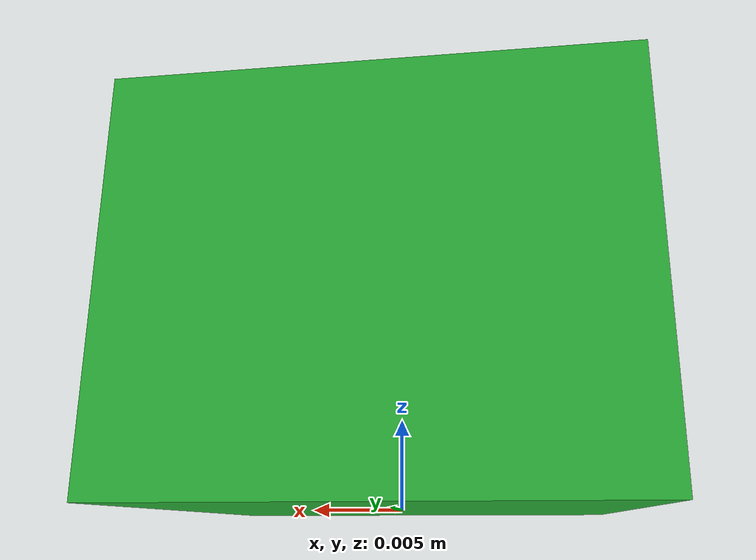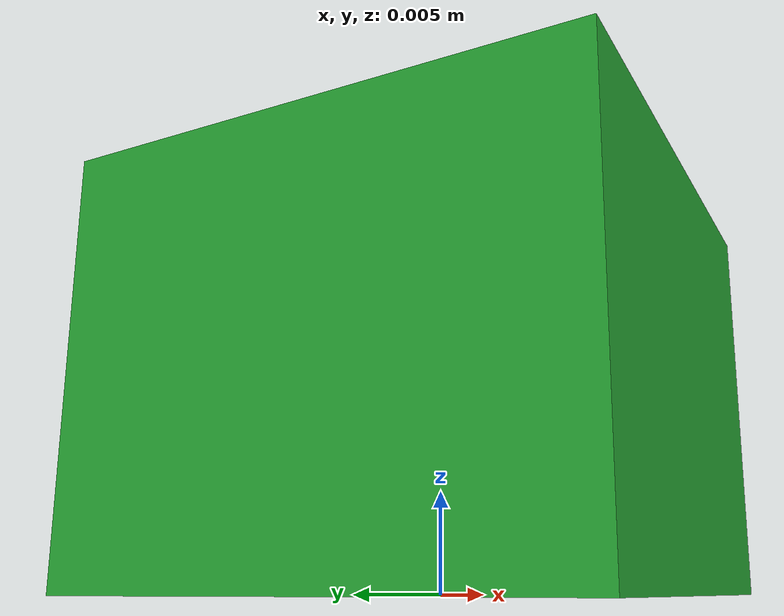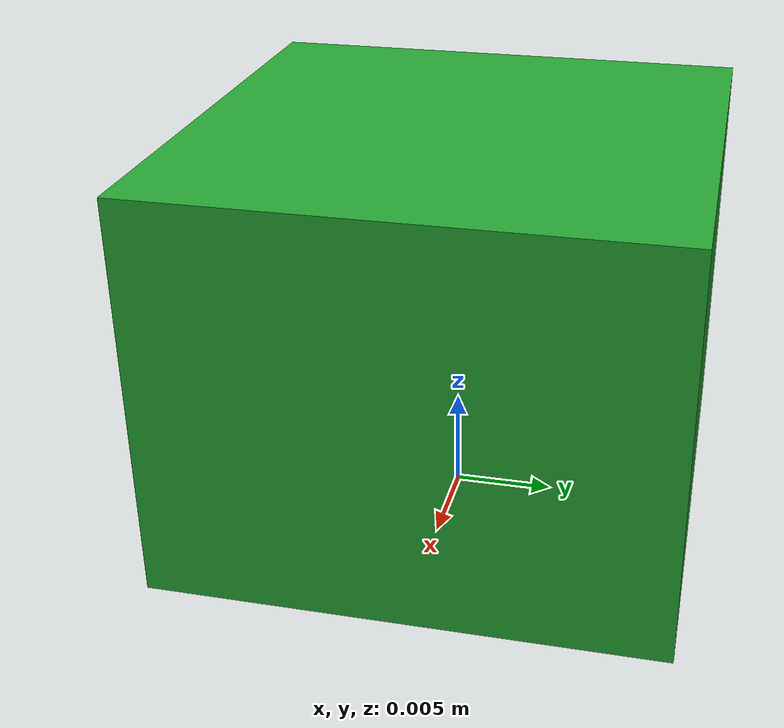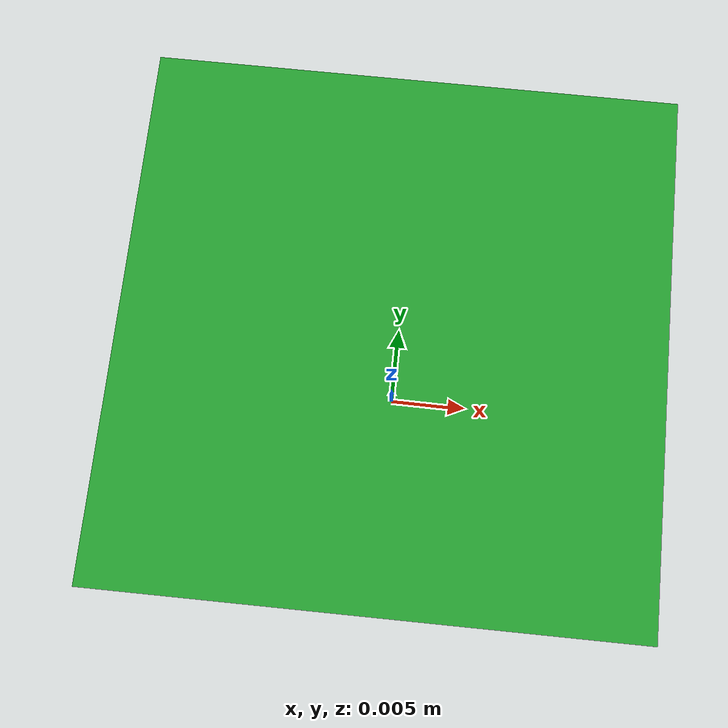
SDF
<?xml version="1.0"?>
<sdf version="1.6">
  <model name="box1_model">
    <pose frame="">0 0 0.01 0 0 0</pose>
    <link name="box1">
      <inertial>
        <pose>0 0 -0.01 0 0 0</pose>
        <mass>0.0001</mass>
        <inertia>
          <ixx>1.065e-10</ixx>
          <ixy>0.000027e-10</ixy>
          <ixz>-0.002403e-10</ixz>
          <iyy>1.066e-10</iyy>
          <iyz>-0.000221e-10</iyz>
          <izz>0.7979e-10</izz>
        </inertia>
      </inertial>
      <collision name="collision">
        <geometry>
          <box>
            <size>0.025 0.025 0.02</size>
          </box>
        </geometry>
        <max_contacts>10</max_contacts>
        <surface>
          <friction>
            <ode>
              <mu>1.0</mu>
              <mu2>1.0</mu2>
            </ode>
          </friction>
          <contact>
            <ode>
              <kp>1000000.0</kp>
              <kd>0.1</kd>
              <min_depth>0.0001</min_depth>
              <max_vel>1.0</max_vel>
            </ode>
          </contact>
        </surface>
      </collision>
      <visual name="visual">
        <geometry>
          <box>
            <size>0.025 0.025 0.02</size>
          </box>
        </geometry>
        <material>
          <script>
            <name>Gazebo/Green</name>
            <uri>file://media/materials/scripts/gazebo.material</uri>
          </script>
        </material>
      </visual>
      <self_collide>0</self_collide>
      <kinematic>0</kinematic>
    </link>
  </model>
</sdf>
